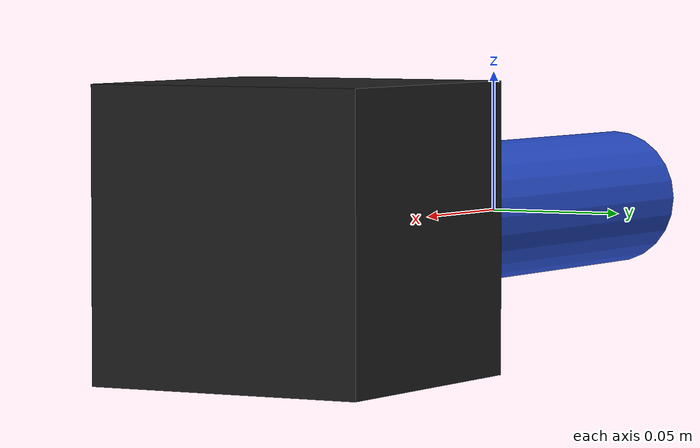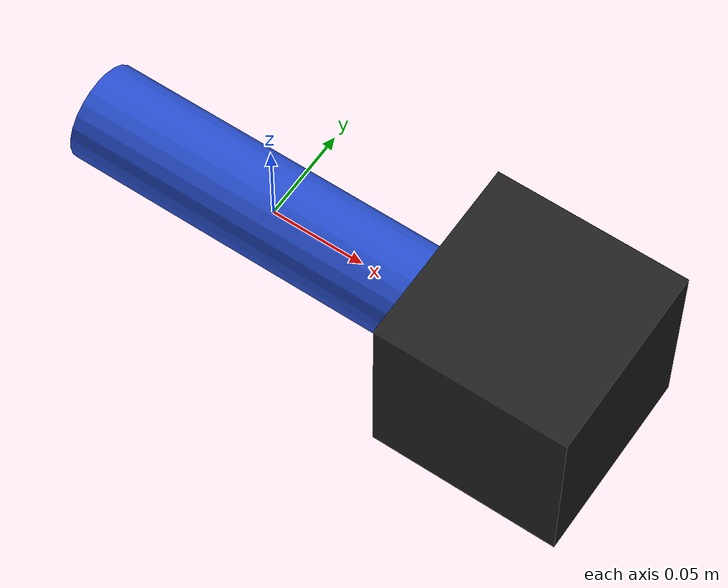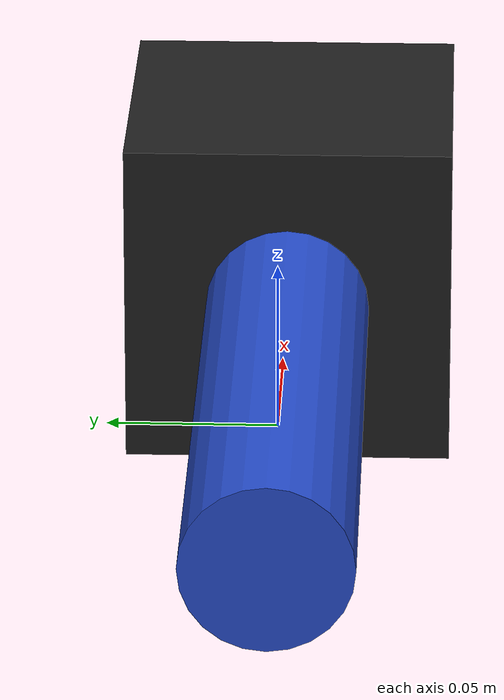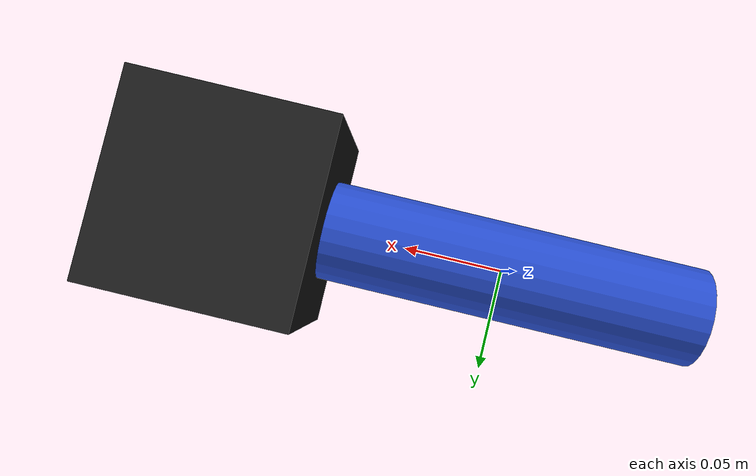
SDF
<?xml version='1.0'?>
<sdf version='1.7'>
  <model name='Gazebo_Vive_Wand'>

    <link name='link'>
      <inertial>
        <mass>0</mass>
        <inertia>
          <ixx>0</ixx>
          <ixy>0</ixy>
          <ixz>0</ixz>
          <iyy>0</iyy>
          <iyz>0</iyz>
          <izz>0</izz>
        </inertia>
      </inertial>

      <self_collide>0</self_collide>
      <enable_wind>0</enable_wind>
      <kinematic>0</kinematic>
      <gravity>0</gravity>

      <visual name='visual'>
      	<pose>0 0 0 0 1.57 0</pose>
        <geometry>
          <cylinder>
            <radius>0.025</radius>
            <length>0.2</length>
          </cylinder>
        </geometry>
        <material>
          <script>
            <name>Gazebo/Blue</name>
            <uri>file://media/materials/scripts/gazebo.material</uri>
          </script>
        </material>
      </visual>

    </link>

    <link name='link_0'>
      <inertial>
        <mass>0</mass>
        <inertia>
          <ixx>0</ixx>
          <ixy>0</ixy>
          <ixz>0</ixz>
          <iyy>0</iyy>
          <iyz>0</iyz>
          <izz>0</izz>
        </inertia>
      </inertial>
      <pose>0.14 0 0 0 -0 0</pose>
      <gravity>0</gravity>
      <self_collide>0</self_collide>
      <kinematic>0</kinematic>
      <enable_wind>0</enable_wind>

      <visual name='visual'>
        <pose>0 0 0 0 -0 0</pose>
        <geometry>
          <box>
            <size>0.1 0.1 0.1</size>
          </box>
        </geometry>
        <material>
          <script>
            <uri>file://media/materials/scripts/gazebo.material</uri>
            <name>Gazebo/Black</name>
          </script>
        </material>
      </visual>
    </link>

    <joint name='link_JOINT_1' type='fixed'>
      <parent>link</parent>
      <child>link_0</child>
      <pose>0 0 0 0 -0 0</pose>
      <physics>
        <ode>
          <limit>
            <cfm>0</cfm>
            <erp>0.2</erp>
          </limit>
          <suspension>
            <cfm>0</cfm>
            <erp>0.2</erp>
          </suspension>
        </ode>
      </physics>
    </joint>
    <static>0</static>
    <allow_auto_disable>1</allow_auto_disable>
  </model>
</sdf>
